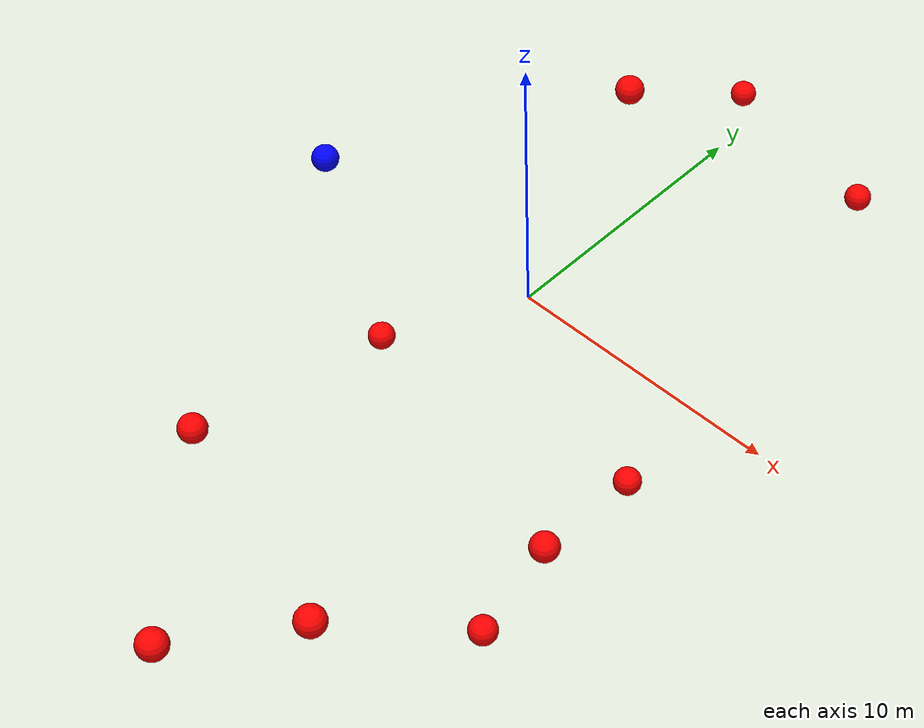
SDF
<?xml version="1.0" ?>
<sdf version="1.8">
    <world name="3d_world">
        <physics name="1ms" type="ode">
            <max_step_size>0.001</max_step_size>
            <real_time_factor>1.0</real_time_factor>
            <real_time_update_rate>1000.0</real_time_update_rate>
        </physics>
        <gravity>0 0 0</gravity>

        <plugin
            filename="gz-sim-physics-system"
            name="gz::sim::v8::systems::Physics">
        </plugin>
        <plugin
            filename="libignition-gazebo-user-commands-system.so"
            name="ignition::gazebo::systems::UserCommands">
        </plugin>
        <plugin
            filename="gz-sim-scene-broadcaster-system"
            name="gz::sim::systems::SceneBroadcaster">
        </plugin>
        <plugin
            filename="gz-sim-sensors-system"
            name="gz::sim::systems::Sensors">
            <render_engine>ogre2</render_engine>
        </plugin>

        <light type="directional" name="sun">
            <cast_shadows>true</cast_shadows>
            <pose>0 0 10 0 0 0</pose>
            <diffuse>0.8 0.8 0.8 1</diffuse>
            <specular>0.2 0.2 0.2 1</specular>
            <attenuation>
                <range>1000</range>
                <constant>0.9</constant>
                <linear>0.01</linear>
                <quadratic>0.001</quadratic>
            </attenuation>
            <direction>-0.5 0.1 -0.9</direction>
        </light>

        <!-- AGENTE -->
        <model name='agente' canonical_link='chassis'>
            <pose relative_to='world'>-10.0 0 0.0 0 0 0</pose>
            <link name='chassis'>
                <pose relative_to='__model__'>0.0 0 0.0 0 0 0</pose>
                <inertial>
                    <mass>1.14395</mass>
                    <inertia>
                        <ixx>0.095329</ixx>
                        <ixy>0</ixy>
                        <ixz>0</ixz>
                        <iyy>0.381317</iyy>
                        <iyz>0</iyz>
                        <izz>0.476646</izz>
                    </inertia>
                </inertial>
                <visual name='visual'>
                    <geometry>
                        <sphere>
                            <radius>0.5</radius>
                        </sphere>
                    </geometry>
                    <material>
                        <ambient>0.0 0.0 1.0 1</ambient>
                        <diffuse>0.0 0.0 1.0 1</diffuse>
                        <specular>0.0 0.0 1.0 1</specular>
                    </material>
                </visual>
                <collision name='collision'>
                    <geometry>
                        <sphere>
                            <radius>0.5</radius>
                        </sphere>
                    </geometry>
                </collision>
                <enable_gravity>false</enable_gravity>
            </link>

            <link name='lidar_link'>
                <pose relative_to='chassis'>0.0 0 0.1 0 0 0</pose>
                <inertial>
                    <mass>0.1</mass>
                    <inertia>
                        <ixx>0.000166667</ixx>
                        <iyy>0.000166667</iyy>
                        <izz>0.000166667</izz>
                    </inertia>
                </inertial>
                <collision name='collision'>
                    <geometry>
                        <cylinder>
                            <radius>0.05</radius>
                            <length>0.1</length>
                        </cylinder>
                    </geometry>
                </collision>
                <visual name='visual'>
                    <geometry>
                        <cylinder>
                            <radius>0.05</radius>
                            <length>0.1</length>
                        </cylinder>
                    </geometry>
                    <material>
                        <ambient>0.0 1.0 0.0 1</ambient>
                        <diffuse>0.0 1.0 0.0 1</diffuse>
                        <specular>0.0 1.0 0.0 1</specular>
                    </material>
                </visual>
                <sensor name="lidar" type="gpu_lidar">
                    <topic>scan</topic>
                    <update_rate>10</update_rate>
                    <lidar>
                        <scan>
                            <horizontal>
                                <samples>5000</samples>
                                <resolution>1</resolution>
                                <min_angle>-3.14159</min_angle>
                                <max_angle>3.14159</max_angle>
                            </horizontal>
                        </scan>
                        <range>
                            <min>0.1</min>
                            <max>10.0</max>
                            <resolution>0.01</resolution>
                        </range>
                    </lidar>
                    <visualize>true</visualize>
                    <always_on>true</always_on>
                    <update_rate>10</update_rate>
                    <pose_frame>lidar</pose_frame>
                </sensor>
                <enable_gravity>false</enable_gravity>
            </link>

            <joint name="lidar_joint" type="fixed">
                <parent>chassis</parent>
                <child>lidar_link</child>
            </joint>

            <plugin
                filename="ignition-gazebo-joint-state-publisher-system"
                name="ignition::gazebo::systems::JointStatePublisher">
            </plugin>
            <plugin
                filename="ignition-gazebo-odometry-publisher-system"
                name="ignition::gazebo::systems::OdometryPublisher">
                <dimensions>3</dimensions>
            </plugin>
            <plugin
                filename="ignition-gazebo-velocity-control-system"
                name="ignition::gazebo::systems::VelocityControl">
                <initial_linear>0.0 0 0</initial_linear>
                <initial_angular>0 0 0.0</initial_angular>
            </plugin>
            <plugin
                filename="libignition-gazebo-pose-publisher-system.so"
                name="ignition::gazebo::systems::PosePublisher">
                <topic>/agente/pose</topic>
                <frame_id>agente</frame_id>
                <update_rate>30</update_rate>
            </plugin>
        </model>

        <!-- OBSTACLE 1 -->
        <model name='obstacle_1' canonical_link='obstacle'>
            <static>false</static>
            <pose relative_to='world'>-5.42 -2.00 -4.42 0 0 0</pose>
            <link name='obstacle'>
                <pose relative_to='__model__'>0.0 0 0.0 0 0 0</pose>
                <visual name='visual'>
                    <geometry>
                        <sphere>
                            <radius>0.50</radius>
                        </sphere>
                    </geometry>
                    <material>
                        <ambient>1.0 0.0 0.0 1</ambient>
                        <diffuse>1.0 0.0 0.0 1</diffuse>
                        <specular>1.0 0.0 0.0 1</specular>
                    </material>
                </visual>
                <collision name='collision'>
                    <geometry>
                        <sphere>
                            <radius>0.50</radius>
                        </sphere>
                    </geometry>
                </collision>
                <enable_gravity>false</enable_gravity>
            </link>

            <plugin
                filename="ignition-gazebo-velocity-control-system"
                name="ignition::gazebo::systems::VelocityControl">
                <initial_linear>1.04 0.64 1.41</initial_linear>
                <initial_angular>0 0 0</initial_angular>
            </plugin>

            <plugin
                filename="ignition-gazebo-odometry-publisher-system"
                name="ignition::gazebo::systems::OdometryPublisher">
                <dimensions>3</dimensions>
            </plugin>
        </model>

        <!-- OBSTACLE 2 -->
        <model name='obstacle_2' canonical_link='obstacle'>
            <static>false</static>
            <pose relative_to='world'>-4.02 16.66 -4.22 0 0 0</pose>
            <link name='obstacle'>
                <pose relative_to='__model__'>0.0 0 0.0 0 0 0</pose>
                <visual name='visual'>
                    <geometry>
                        <sphere>
                            <radius>0.50</radius>
                        </sphere>
                    </geometry>
                    <material>
                        <ambient>1.0 0.0 0.0 1</ambient>
                        <diffuse>1.0 0.0 0.0 1</diffuse>
                        <specular>1.0 0.0 0.0 1</specular>
                    </material>
                </visual>
                <collision name='collision'>
                    <geometry>
                        <sphere>
                            <radius>0.50</radius>
                        </sphere>
                    </geometry>
                </collision>
                <enable_gravity>false</enable_gravity>
            </link>

            <plugin
                filename="ignition-gazebo-velocity-control-system"
                name="ignition::gazebo::systems::VelocityControl">
                <initial_linear>0.23 -1.93 0.49</initial_linear>
                <initial_angular>0 0 0</initial_angular>
            </plugin>

            <plugin
                filename="ignition-gazebo-odometry-publisher-system"
                name="ignition::gazebo::systems::OdometryPublisher">
                <dimensions>3</dimensions>
            </plugin>
        </model>

        <!-- OBSTACLE 3 -->
        <model name='obstacle_3' canonical_link='obstacle'>
            <static>false</static>
            <pose relative_to='world'>-1.44 6.61 4.12 0 0 0</pose>
            <link name='obstacle'>
                <pose relative_to='__model__'>0.0 0 0.0 0 0 0</pose>
                <visual name='visual'>
                    <geometry>
                        <sphere>
                            <radius>0.50</radius>
                        </sphere>
                    </geometry>
                    <material>
                        <ambient>1.0 0.0 0.0 1</ambient>
                        <diffuse>1.0 0.0 0.0 1</diffuse>
                        <specular>1.0 0.0 0.0 1</specular>
                    </material>
                </visual>
                <collision name='collision'>
                    <geometry>
                        <sphere>
                            <radius>0.50</radius>
                        </sphere>
                    </geometry>
                </collision>
                <enable_gravity>false</enable_gravity>
            </link>

            <plugin
                filename="ignition-gazebo-velocity-control-system"
                name="ignition::gazebo::systems::VelocityControl">
                <initial_linear>0.07 -1.70 -1.06</initial_linear>
                <initial_angular>0 0 0</initial_angular>
            </plugin>

            <plugin
                filename="ignition-gazebo-odometry-publisher-system"
                name="ignition::gazebo::systems::OdometryPublisher">
                <dimensions>3</dimensions>
            </plugin>
        </model>

        <!-- OBSTACLE 4 -->
        <model name='obstacle_4' canonical_link='obstacle'>
            <static>false</static>
            <pose relative_to='world'>7.58 -7.33 0.22 0 0 0</pose>
            <link name='obstacle'>
                <pose relative_to='__model__'>0.0 0 0.0 0 0 0</pose>
                <visual name='visual'>
                    <geometry>
                        <sphere>
                            <radius>0.50</radius>
                        </sphere>
                    </geometry>
                    <material>
                        <ambient>1.0 0.0 0.0 1</ambient>
                        <diffuse>1.0 0.0 0.0 1</diffuse>
                        <specular>1.0 0.0 0.0 1</specular>
                    </material>
                </visual>
                <collision name='collision'>
                    <geometry>
                        <sphere>
                            <radius>0.50</radius>
                        </sphere>
                    </geometry>
                </collision>
                <enable_gravity>false</enable_gravity>
            </link>

            <plugin
                filename="ignition-gazebo-velocity-control-system"
                name="ignition::gazebo::systems::VelocityControl">
                <initial_linear>-0.92 1.43 -0.04</initial_linear>
                <initial_angular>0 0 0</initial_angular>
            </plugin>

            <plugin
                filename="ignition-gazebo-odometry-publisher-system"
                name="ignition::gazebo::systems::OdometryPublisher">
                <dimensions>3</dimensions>
            </plugin>
        </model>

        <!-- OBSTACLE 5 -->
        <model name='obstacle_5' canonical_link='obstacle'>
            <static>false</static>
            <pose relative_to='world'>-3.26 -11.89 0.98 0 0 0</pose>
            <link name='obstacle'>
                <pose relative_to='__model__'>0.0 0 0.0 0 0 0</pose>
                <visual name='visual'>
                    <geometry>
                        <sphere>
                            <radius>0.50</radius>
                        </sphere>
                    </geometry>
                    <material>
                        <ambient>1.0 0.0 0.0 1</ambient>
                        <diffuse>1.0 0.0 0.0 1</diffuse>
                        <specular>1.0 0.0 0.0 1</specular>
                    </material>
                </visual>
                <collision name='collision'>
                    <geometry>
                        <sphere>
                            <radius>0.50</radius>
                        </sphere>
                    </geometry>
                </collision>
                <enable_gravity>false</enable_gravity>
            </link>

            <plugin
                filename="ignition-gazebo-velocity-control-system"
                name="ignition::gazebo::systems::VelocityControl">
                <initial_linear>0.08 1.99 -0.16</initial_linear>
                <initial_angular>0 0 0</initial_angular>
            </plugin>

            <plugin
                filename="ignition-gazebo-odometry-publisher-system"
                name="ignition::gazebo::systems::OdometryPublisher">
                <dimensions>3</dimensions>
            </plugin>
        </model>

        <!-- OBSTACLE 6 -->
        <model name='obstacle_6' canonical_link='obstacle'>
            <static>false</static>
            <pose relative_to='world'>3.26 14.49 -3.56 0 0 0</pose>
            <link name='obstacle'>
                <pose relative_to='__model__'>0.0 0 0.0 0 0 0</pose>
                <visual name='visual'>
                    <geometry>
                        <sphere>
                            <radius>0.50</radius>
                        </sphere>
                    </geometry>
                    <material>
                        <ambient>1.0 0.0 0.0 1</ambient>
                        <diffuse>1.0 0.0 0.0 1</diffuse>
                        <specular>1.0 0.0 0.0 1</specular>
                    </material>
                </visual>
                <collision name='collision'>
                    <geometry>
                        <sphere>
                            <radius>0.50</radius>
                        </sphere>
                    </geometry>
                </collision>
                <enable_gravity>false</enable_gravity>
            </link>

            <plugin
                filename="ignition-gazebo-velocity-control-system"
                name="ignition::gazebo::systems::VelocityControl">
                <initial_linear>-0.48 -1.88 0.46</initial_linear>
                <initial_angular>0 0 0</initial_angular>
            </plugin>

            <plugin
                filename="ignition-gazebo-odometry-publisher-system"
                name="ignition::gazebo::systems::OdometryPublisher">
                <dimensions>3</dimensions>
            </plugin>
        </model>

        <!-- OBSTACLE 7 -->
        <model name='obstacle_7' canonical_link='obstacle'>
            <static>false</static>
            <pose relative_to='world'>3.77 -18.94 3.82 0 0 0</pose>
            <link name='obstacle'>
                <pose relative_to='__model__'>0.0 0 0.0 0 0 0</pose>
                <visual name='visual'>
                    <geometry>
                        <sphere>
                            <radius>0.50</radius>
                        </sphere>
                    </geometry>
                    <material>
                        <ambient>1.0 0.0 0.0 1</ambient>
                        <diffuse>1.0 0.0 0.0 1</diffuse>
                        <specular>1.0 0.0 0.0 1</specular>
                    </material>
                </visual>
                <collision name='collision'>
                    <geometry>
                        <sphere>
                            <radius>0.50</radius>
                        </sphere>
                    </geometry>
                </collision>
                <enable_gravity>false</enable_gravity>
            </link>

            <plugin
                filename="ignition-gazebo-velocity-control-system"
                name="ignition::gazebo::systems::VelocityControl">
                <initial_linear>-0.08 1.96 -0.40</initial_linear>
                <initial_angular>0 0 0</initial_angular>
            </plugin>

            <plugin
                filename="ignition-gazebo-odometry-publisher-system"
                name="ignition::gazebo::systems::OdometryPublisher">
                <dimensions>3</dimensions>
            </plugin>
        </model>

        <!-- OBSTACLE 8 -->
        <model name='obstacle_8' canonical_link='obstacle'>
            <static>false</static>
            <pose relative_to='world'>6.83 -9.35 -2.83 0 0 0</pose>
            <link name='obstacle'>
                <pose relative_to='__model__'>0.0 0 0.0 0 0 0</pose>
                <visual name='visual'>
                    <geometry>
                        <sphere>
                            <radius>0.50</radius>
                        </sphere>
                    </geometry>
                    <material>
                        <ambient>1.0 0.0 0.0 1</ambient>
                        <diffuse>1.0 0.0 0.0 1</diffuse>
                        <specular>1.0 0.0 0.0 1</specular>
                    </material>
                </visual>
                <collision name='collision'>
                    <geometry>
                        <sphere>
                            <radius>0.50</radius>
                        </sphere>
                    </geometry>
                </collision>
                <enable_gravity>false</enable_gravity>
            </link>

            <plugin
                filename="ignition-gazebo-velocity-control-system"
                name="ignition::gazebo::systems::VelocityControl">
                <initial_linear>-1.06 1.62 0.49</initial_linear>
                <initial_angular>0 0 0</initial_angular>
            </plugin>

            <plugin
                filename="ignition-gazebo-odometry-publisher-system"
                name="ignition::gazebo::systems::OdometryPublisher">
                <dimensions>3</dimensions>
            </plugin>
        </model>

        <!-- OBSTACLE 9 -->
        <model name='obstacle_9' canonical_link='obstacle'>
            <static>false</static>
            <pose relative_to='world'>6.37 -15.47 3.81 0 0 0</pose>
            <link name='obstacle'>
                <pose relative_to='__model__'>0.0 0 0.0 0 0 0</pose>
                <visual name='visual'>
                    <geometry>
                        <sphere>
                            <radius>0.50</radius>
                        </sphere>
                    </geometry>
                    <material>
                        <ambient>1.0 0.0 0.0 1</ambient>
                        <diffuse>1.0 0.0 0.0 1</diffuse>
                        <specular>1.0 0.0 0.0 1</specular>
                    </material>
                </visual>
                <collision name='collision'>
                    <geometry>
                        <sphere>
                            <radius>0.50</radius>
                        </sphere>
                    </geometry>
                </collision>
                <enable_gravity>false</enable_gravity>
            </link>

            <plugin
                filename="ignition-gazebo-velocity-control-system"
                name="ignition::gazebo::systems::VelocityControl">
                <initial_linear>-0.90 1.73 -0.43</initial_linear>
                <initial_angular>0 0 0</initial_angular>
            </plugin>

            <plugin
                filename="ignition-gazebo-odometry-publisher-system"
                name="ignition::gazebo::systems::OdometryPublisher">
                <dimensions>3</dimensions>
            </plugin>
        </model>

        <!-- OBSTACLE 10 -->
        <model name='obstacle_10' canonical_link='obstacle'>
            <static>false</static>
            <pose relative_to='world'>5.29 -0.77 -4.71 0 0 0</pose>
            <link name='obstacle'>
                <pose relative_to='__model__'>0.0 0 0.0 0 0 0</pose>
                <visual name='visual'>
                    <geometry>
                        <sphere>
                            <radius>0.50</radius>
                        </sphere>
                    </geometry>
                    <material>
                        <ambient>1.0 0.0 0.0 1</ambient>
                        <diffuse>1.0 0.0 0.0 1</diffuse>
                        <specular>1.0 0.0 0.0 1</specular>
                    </material>
                </visual>
                <collision name='collision'>
                    <geometry>
                        <sphere>
                            <radius>0.50</radius>
                        </sphere>
                    </geometry>
                </collision>
                <enable_gravity>false</enable_gravity>
            </link>

            <plugin
                filename="ignition-gazebo-velocity-control-system"
                name="ignition::gazebo::systems::VelocityControl">
                <initial_linear>-1.79 0.14 0.88</initial_linear>
                <initial_angular>0 0 0</initial_angular>
            </plugin>

            <plugin
                filename="ignition-gazebo-odometry-publisher-system"
                name="ignition::gazebo::systems::OdometryPublisher">
                <dimensions>3</dimensions>
            </plugin>
        </model>

    </world>
</sdf>
